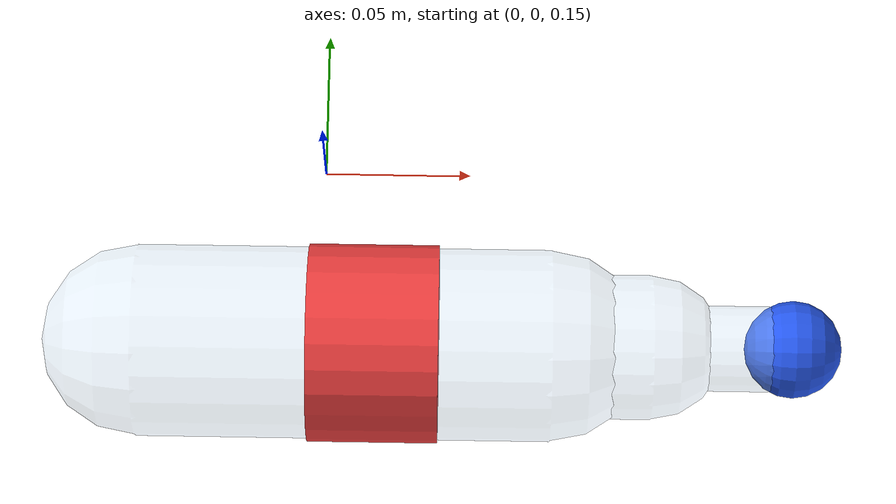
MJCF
<mujoco>
  <!-- 550ml 农夫山泉空瓶近似模型。
       目标先做场景初始化和可视化检查，因此这里采用刚体分段几何近似:
       主瓶身 + 肩部 + 瓶颈 + 瓶盖。
       瓶体为空且略有弹性, 因此接触参数比当前方块更软, 质量也更轻。 -->
  <default>
    <default class="bottle_shell">
      <geom
          friction="0.9 0.02 0.005"
          conaffinity="7"
          condim="4"
          solref="0.015 1.0"
          solimp="0.90 0.97 0.001"
      />
    </default>
  </default>

  <asset>
    <material name="bottle_clear" rgba="0.78 0.90 1.00 0.28" specular="0.2" shininess="0.15"/>
    <material name="bottle_label" rgba="0.95 0.25 0.25 1"/>
    <material name="bottle_cap" rgba="0.15 0.35 0.95 1"/>
  </asset>

  <worldbody>
    <!-- 总高度约 22.7cm, 主体直径约 6.4cm。
         body 原点放在标签带附近, 方便后续把抓取中心对到瓶身中段。 -->
    <body name="cube" pos="0.028 -0.066 0.171" quat="0.70710678 0 0.70710678 0" childclass="bottle_shell">
      <freejoint name="cube_freejoint"/>

      <!-- 主瓶身 -->
      <geom
          name="cube"
          type="capsule"
          fromto="0 0 -0.090 0 0 0.050"
          size="0.0325"
          mass="0.016"
          group="1"
          material="bottle_clear"
      />

      <!-- 标签带, 给视觉一个更像矿泉水瓶的抓取区域 -->
      <geom
          name="bottle_label_band"
          type="cylinder"
          size="0.0335 0.022"
          pos="0 0 -0.010"
          mass="0"
          group="1"
          material="bottle_label"
          contype="0"
          conaffinity="0"
          density="0"
      />

      <!-- 肩部 -->
      <geom
          name="bottle_shoulder"
          type="capsule"
          fromto="0 0 0.040 0 0 0.084"
          size="0.0245"
          mass="0.002"
          group="1"
          material="bottle_clear"
      />

      <!-- 瓶颈 -->
      <geom
          name="bottle_neck"
          type="capsule"
          fromto="0 0 0.088 0 0 0.124"
          size="0.0145"
          mass="0.0015"
          group="1"
          material="bottle_clear"
      />

      <!-- 瓶盖 -->
      <geom
          name="bottle_cap"
          type="sphere"
          size="0.0165"
          pos="0 0 0.132"
          mass="0.001"
          group="1"
          material="bottle_cap"
      />

      <site name="cube_center" pos="0 0 0.020" size="0.006" rgba="0 0.8 0 0.7" group="4"/>
      <site name="bottle_center" pos="0 0 0.020" size="0.006" rgba="0 0.8 0 0.7" group="4"/>
      <site name="bottle_grasp_band" pos="0 0 -0.010" size="0.038 0.038 0.024" type="ellipsoid" rgba="1 0 0 0.10" group="4"/>
    </body>
  </worldbody>
</mujoco>
